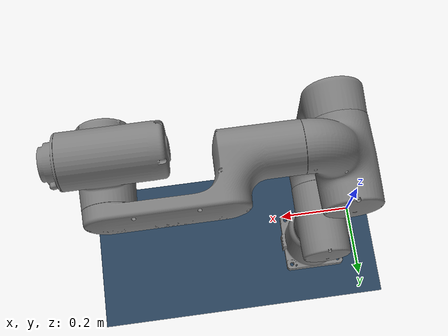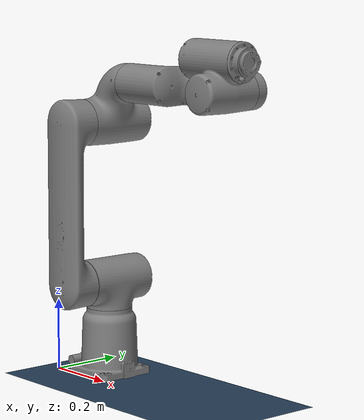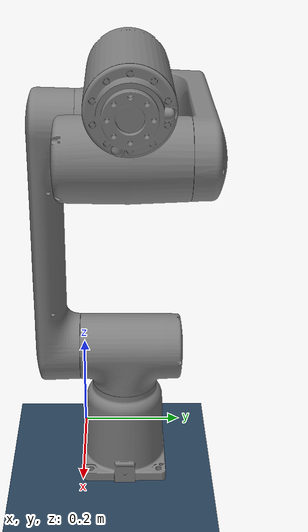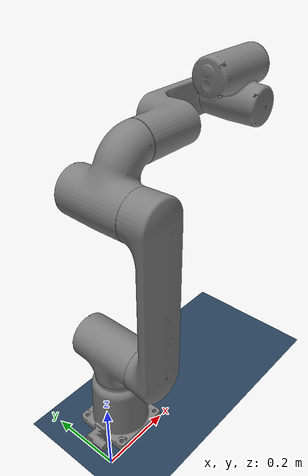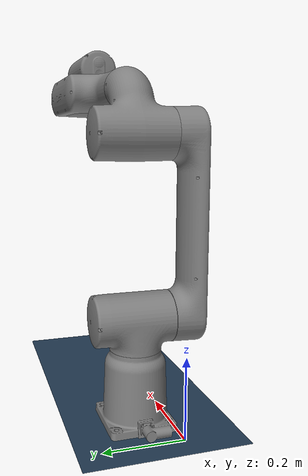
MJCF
<mujoco model="gofa scene">
  <include file="gofa_model.xml"/>

  <statistic center="0.3 0 0.4" extent="1"/>

  <visual>
    <headlight diffuse="0.6 0.6 0.6" ambient="0.3 0.3 0.3" specular="0 0 0"/>
    <rgba haze="0.15 0.25 0.35 1"/>
  </visual>

  <asset>
    <texture type="skybox" builtin="gradient" rgb1="0.3 0.5 0.7" rgb2="0 0 0" width="512" height="3072"/>
    <texture type="2d" name="groundplane" builtin="checker" mark="edge" rgb1="0.2 0.3 0.4" rgb2="0.1 0.2 0.3"
      markrgb="0.8 0.8 0.8" width="300" height="300"/>
    <material name="groundplane" texture="groundplane" texuniform="true" texrepeat="5 5" reflectance="0.2"/>
  </asset>

  <worldbody>
    <light pos="0 0 1.5" dir="0 0 -1" directional="true"/>
    <geom name="floor" size="0 0 0.05" type="plane" material="groundplane"/>
  </worldbody>
</mujoco>

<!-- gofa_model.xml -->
<mujoco model="ABB_gofa_arm">
<compiler coordinate="local" angle="radian"/>

    <default>
        <!-- convert the coordinate system to MuJoCo -->
        <geom type="mesh" xyaxes="1 0 0 0 1 0"/>

    </default>
    <asset>
        <!-- Fusion outputs meshes with mm units by default, but must be converted to m in MuJoCo, hence the scaling -->
        <mesh name="base" file="link0.stl" scale="0.001 0.001 0.001"/>
        <mesh name="link1" file="link1.stl" scale="0.001 0.001 0.001"/>
        <mesh name="link2" file="link2.stl" scale="0.001 0.001 0.001"/>
        <mesh name="link3" file="link3.stl" scale="0.001 0.001 0.001"/>
        <mesh name="link4" file="link4.stl" scale="0.001 0.001 0.001"/>
        <mesh name="link5" file="link5.stl" scale="0.001 0.001 0.001"/>
        <mesh name="link6" file="link6.stl" scale="0.001 0.001 0.001"/>
    </asset>
    <worldbody>
        <body name="base" pos="0 0 0">
            <geom mesh="base"/>

            <body name="link1" pos="0.021 -0.1075 -0.001">
            	<joint name="joint1" type="hinge" pos="0.102 0.1889 0" axis="0 0 1" stiffness = "1000" damping = "5"/>
                <geom mesh="link1"/>

                <body name="link2" pos="0.0352 -0.015 0.0">
    	    		<joint name="joint2" type="hinge" pos="0.065 0 0.265" axis="0 1 0" stiffness = "1000" damping = "50"/>
            		<geom mesh="link2"/>

                    <body name="link3" pos="0 0.093 0">
                	<joint name="joint3" type="hinge" pos="0.065 0 0.709" axis="0 1 0" stiffness = "1000" damping = "50"/>
                        <geom mesh="link3"/>

                        <body name="link4" pos="0.065 0.058 -0.00">
                    		<joint name="joint4" type="hinge" pos="0 0.053 0.8185" axis="1 0 0" stiffness = "1000" damping = "50"/>
                        	<geom mesh="link4"/>

                        	<body name="link5" pos="0 -0.04 0">
                			<joint name="joint5" type="hinge" pos="0.47 0 0.82" axis="0 1 0" stiffness = "1000" damping = "50"/>
                                	<geom mesh="link5"/>

                                <body name="link6" pos="0 0.041 0">
                            		<joint name="joint6" type="hinge" pos="0.15 0.0525 0.899" axis="1 0 0" stiffness = "1000" damping = "50"/>
                                	<geom mesh="link6"/>

                                </body> <!-- Closing tag for link6 -->
                            </body> <!-- Closing tag for link5 -->
                        </body> <!-- Closing tag for link4 -->
                    </body> <!-- Closing tag for link3 -->
                </body> <!-- Closing tag for link2 -->
            </body> <!-- Closing tag for link1 -->
        </body> <!-- Closing tag for base -->
    </worldbody>

	<actuator>
		<!-- Position actuators for each joint with appropriate kp, kv, and control ranges -->
		<position name="act_joint1" joint="joint1" kp="100" ctrllimited = "true" ctrlrange="-6.28 6.28"/>
		<position name="act_joint2" joint="joint2" kp="80"  ctrllimited = "true" ctrlrange="-1.57 1.57"/>
		<position name="act_joint3" joint="joint3" kp="90"  ctrllimited = "true" ctrlrange="-2.0 2.0"/>
		<position name="act_joint4" joint="joint4" kp="70"  ctrllimited = "true" ctrlrange="-1.57 1.57"/>
		<position name="act_joint5" joint="joint5" kp="85"  ctrllimited = "true" ctrlrange="-2.5 2.5"/>
		<position name="act_joint6" joint="joint6" kp="60"  ctrllimited = "true" ctrlrange="-6.28 6.28"/>
	</actuator>

</mujoco>
